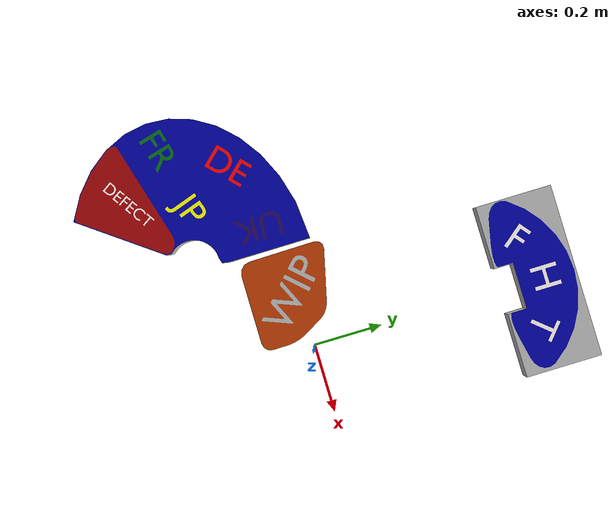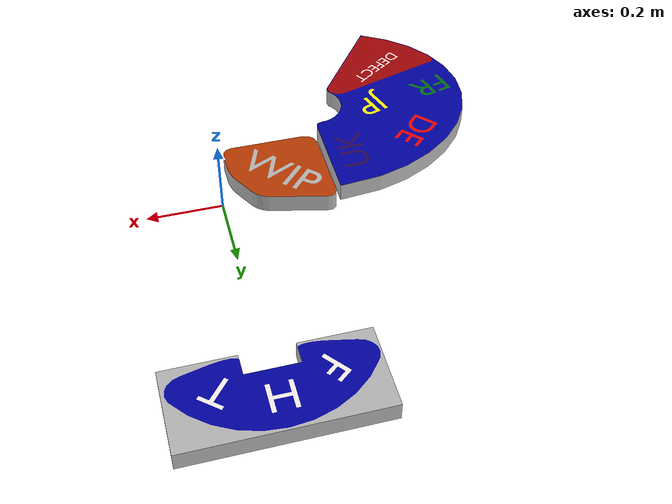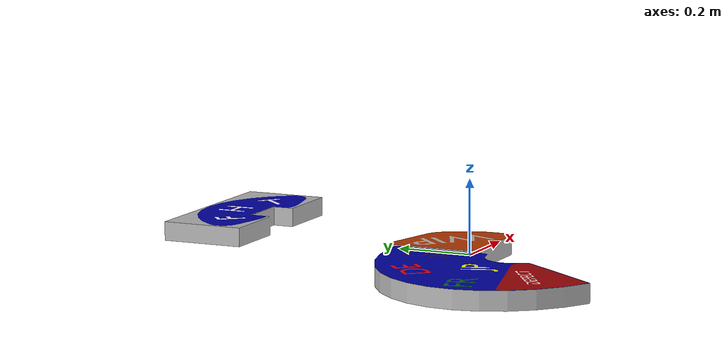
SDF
<?xml version='1.0'?>
<sdf version='1.4'>
  <model name="production_zones_mobile">
    <static>true</static>
    <pose>0 0 0 0 0 0</pose>

    <link name="test_zones">
      <pose>0 0 0.02 0 0 0</pose>
      <visual name="colored-zones">
        <geometry>
          <mesh>
            <uri>model://production_zones_mobile/meshes/production_zones_mobile.dae</uri>
          </mesh>
        </geometry>
      </visual>
      <collision name="colored-zones">
        <geometry>
          <mesh>
            <uri>model://production_zones_mobile/meshes/production_zones_mobile.dae</uri>
          </mesh>
        </geometry>
      </collision>
    </link>

  </model>
</sdf>
